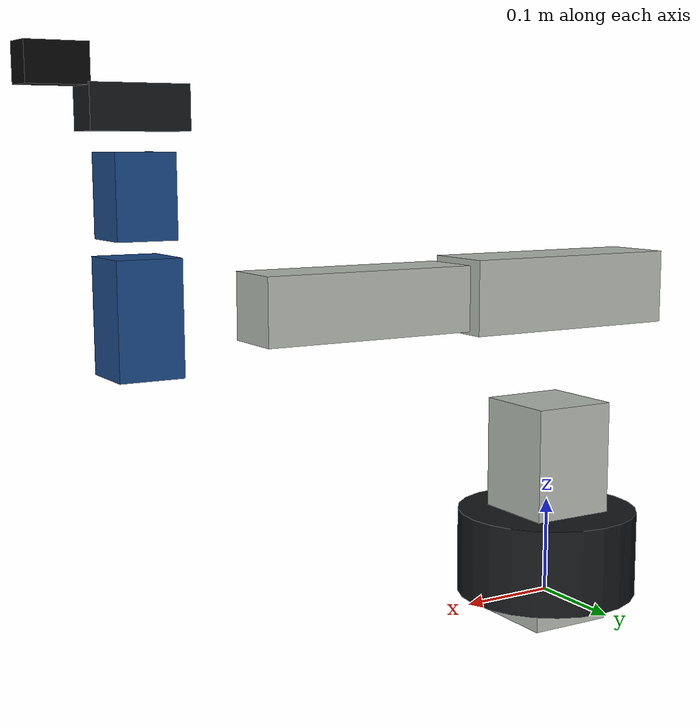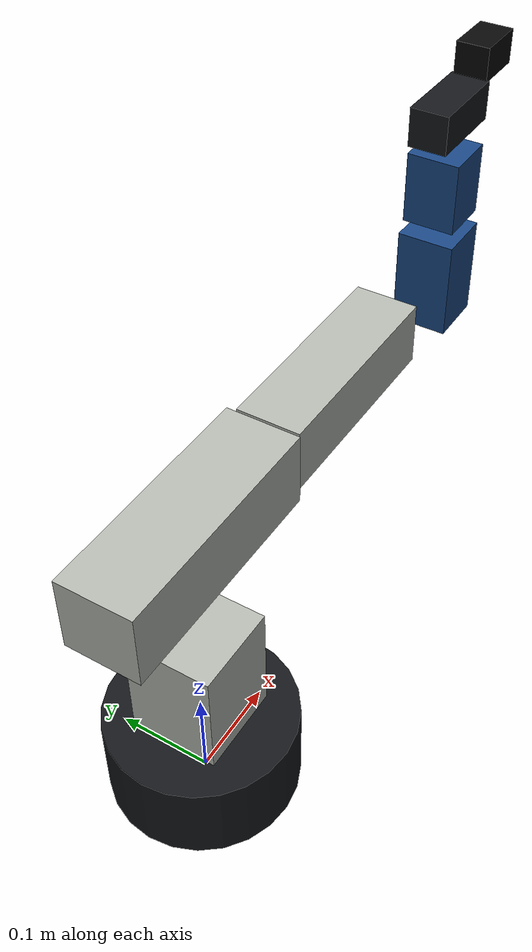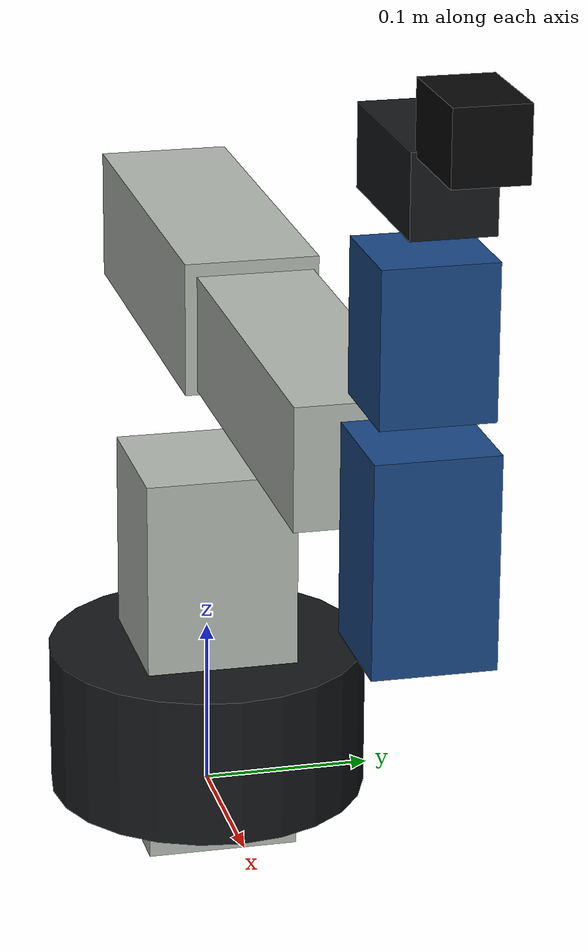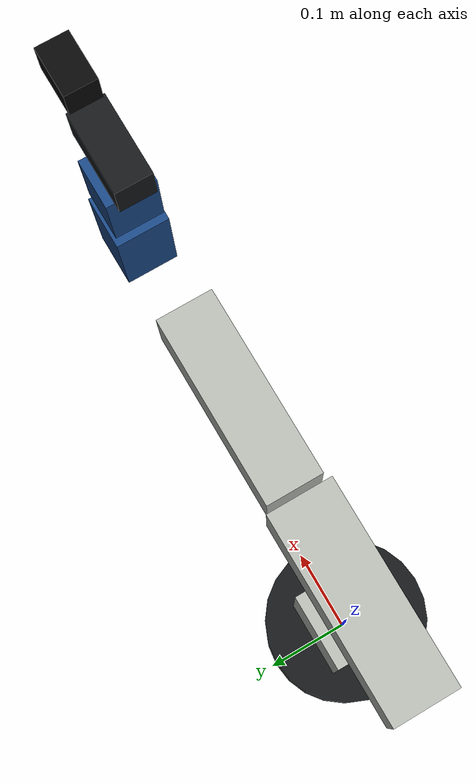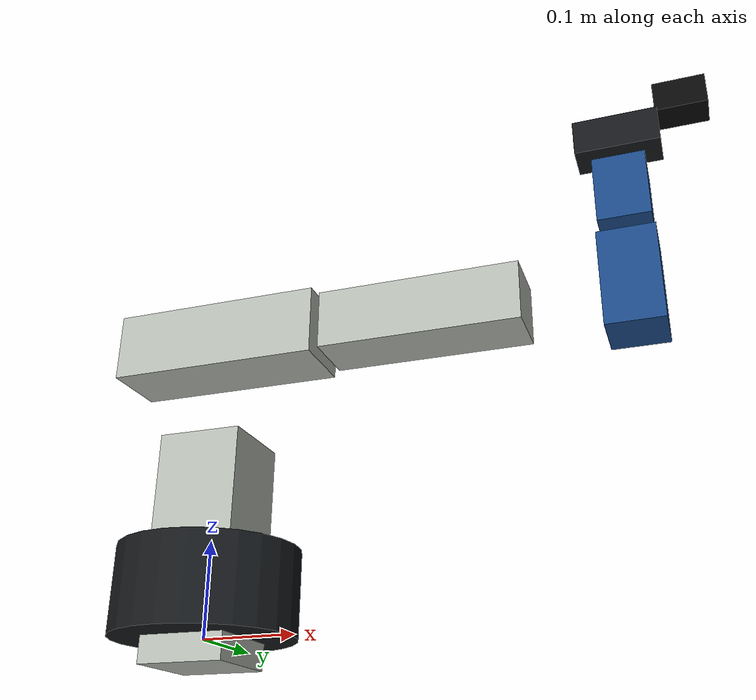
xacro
<?xml version="1.0"?>
<robot xmlns:xacro="http://www.ros.org/wiki/xacro" name="synria_6dof_arm">
  <!-- Approximate model for planning/simulation bringup until vendor URDF/CAD is available. -->

  <xacro:include filename="$(find synria_arm_description)/urdf/synria_c10_camera.xacro"/>

  <xacro:property name="base_height" value="0.090"/>
  <xacro:property name="upper_arm" value="0.235"/>
  <xacro:property name="forearm" value="0.220"/>
  <xacro:property name="wrist" value="0.105"/>
  <xacro:property name="tool" value="0.090"/>

  <material name="synria_dark">
    <color rgba="0.08 0.09 0.10 1.0"/>
  </material>
  <material name="synria_silver">
    <color rgba="0.70 0.72 0.69 1.0"/>
  </material>
  <material name="synria_blue">
    <color rgba="0.10 0.28 0.52 1.0"/>
  </material>

  <xacro:macro name="box_link" params="name size mass color">
    <link name="${name}">
      <visual>
        <origin xyz="0 0 0" rpy="0 0 0"/>
        <geometry>
          <box size="${size}"/>
        </geometry>
        <material name="${color}"/>
      </visual>
      <collision>
        <origin xyz="0 0 0" rpy="0 0 0"/>
        <geometry>
          <box size="${size}"/>
        </geometry>
      </collision>
      <inertial>
        <origin xyz="0 0 0" rpy="0 0 0"/>
        <mass value="${mass}"/>
        <inertia ixx="0.01" ixy="0.0" ixz="0.0" iyy="0.01" iyz="0.0" izz="0.01"/>
      </inertial>
    </link>
  </xacro:macro>

  <link name="world"/>

  <link name="base_link">
    <visual>
      <origin xyz="0 0 0.045" rpy="0 0 0"/>
      <geometry>
        <cylinder radius="0.095" length="${base_height}"/>
      </geometry>
      <material name="synria_dark"/>
    </visual>
    <collision>
      <origin xyz="0 0 0.045" rpy="0 0 0"/>
      <geometry>
        <cylinder radius="0.095" length="${base_height}"/>
      </geometry>
    </collision>
    <inertial>
      <origin xyz="0 0 0.045" rpy="0 0 0"/>
      <mass value="1.2"/>
      <inertia ixx="0.01" ixy="0.0" ixz="0.0" iyy="0.01" iyz="0.0" izz="0.01"/>
    </inertial>
  </link>

  <joint name="world_to_base" type="fixed">
    <parent link="world"/>
    <child link="base_link"/>
    <origin xyz="0 0 0" rpy="0 0 0"/>
  </joint>

  <xacro:box_link name="shoulder_link" size="0.090 0.090 ${upper_arm}" mass="0.8" color="synria_silver"/>
  <xacro:box_link name="upper_arm_link" size="${upper_arm} 0.075 0.075" mass="0.7" color="synria_silver"/>
  <xacro:box_link name="forearm_link" size="${forearm} 0.065 0.065" mass="0.55" color="synria_silver"/>
  <xacro:box_link name="wrist_1_link" size="0.060 0.060 ${wrist}" mass="0.25" color="synria_blue"/>
  <xacro:box_link name="wrist_2_link" size="0.055 0.055 0.075" mass="0.20" color="synria_blue"/>
  <xacro:box_link name="tool0" size="${tool} 0.040 0.040" mass="0.12" color="synria_dark"/>

  <joint name="joint_1" type="revolute">
    <parent link="base_link"/>
    <child link="shoulder_link"/>
    <origin xyz="0 0 ${base_height}" rpy="0 0 0"/>
    <axis xyz="0 0 1"/>
    <limit lower="-${pi}" upper="${pi}" effort="30" velocity="1.5"/>
  </joint>

  <joint name="joint_2" type="revolute">
    <parent link="shoulder_link"/>
    <child link="upper_arm_link"/>
    <origin xyz="0 0 ${upper_arm}" rpy="0 0 0"/>
    <axis xyz="0 1 0"/>
    <limit lower="-1.5708" upper="1.5708" effort="30" velocity="1.5"/>
  </joint>

  <joint name="joint_3" type="revolute">
    <parent link="upper_arm_link"/>
    <child link="forearm_link"/>
    <origin xyz="${upper_arm} 0 0" rpy="0 0 0"/>
    <axis xyz="0 1 0"/>
    <limit lower="-2.3562" upper="2.3562" effort="25" velocity="1.5"/>
  </joint>

  <joint name="joint_4" type="revolute">
    <parent link="forearm_link"/>
    <child link="wrist_1_link"/>
    <origin xyz="${forearm} 0 0" rpy="0 0 0"/>
    <axis xyz="1 0 0"/>
    <limit lower="-${pi}" upper="${pi}" effort="15" velocity="2.0"/>
  </joint>

  <joint name="joint_5" type="revolute">
    <parent link="wrist_1_link"/>
    <child link="wrist_2_link"/>
    <origin xyz="0 0 ${wrist}" rpy="0 0 0"/>
    <axis xyz="0 1 0"/>
    <limit lower="-1.5708" upper="1.5708" effort="15" velocity="2.0"/>
  </joint>

  <joint name="joint_6" type="revolute">
    <parent link="wrist_2_link"/>
    <child link="tool0"/>
    <origin xyz="0 0 0.075" rpy="0 0 0"/>
    <axis xyz="1 0 0"/>
    <limit lower="-${pi}" upper="${pi}" effort="10" velocity="2.5"/>
  </joint>

  <xacro:synria_c10_camera parent="tool0" origin_xyz="0.070 0 0.035" origin_rpy="0 0 0"/>

  <ros2_control name="SynriaArmSystem" type="system">
    <hardware>
      <plugin>mock_components/GenericSystem</plugin>
    </hardware>
    <joint name="joint_1">
      <command_interface name="position"/>
      <state_interface name="position"/>
      <state_interface name="velocity"/>
    </joint>
    <joint name="joint_2">
      <command_interface name="position"/>
      <state_interface name="position"/>
      <state_interface name="velocity"/>
    </joint>
    <joint name="joint_3">
      <command_interface name="position"/>
      <state_interface name="position"/>
      <state_interface name="velocity"/>
    </joint>
    <joint name="joint_4">
      <command_interface name="position"/>
      <state_interface name="position"/>
      <state_interface name="velocity"/>
    </joint>
    <joint name="joint_5">
      <command_interface name="position"/>
      <state_interface name="position"/>
      <state_interface name="velocity"/>
    </joint>
    <joint name="joint_6">
      <command_interface name="position"/>
      <state_interface name="position"/>
      <state_interface name="velocity"/>
    </joint>
  </ros2_control>
</robot>

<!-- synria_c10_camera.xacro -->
<robot xmlns:xacro="http://www.ros.org/wiki/xacro">
  <xacro:macro name="synria_c10_camera" params="parent origin_xyz:='0 0 0' origin_rpy:='0 0 0'">
    <link name="c10_camera_link">
      <visual>
        <origin xyz="0 0 0" rpy="0 0 0"/>
        <geometry>
          <box size="0.055 0.035 0.035"/>
        </geometry>
        <material name="camera_black">
          <color rgba="0.03 0.03 0.03 1.0"/>
        </material>
      </visual>
      <collision>
        <origin xyz="0 0 0" rpy="0 0 0"/>
        <geometry>
          <box size="0.055 0.035 0.035"/>
        </geometry>
      </collision>
      <inertial>
        <origin xyz="0 0 0" rpy="0 0 0"/>
        <mass value="0.08"/>
        <inertia ixx="0.00002" ixy="0.0" ixz="0.0" iyy="0.00002" iyz="0.0" izz="0.00002"/>
      </inertial>
    </link>

    <joint name="c10_camera_fixed" type="fixed">
      <parent link="${parent}"/>
      <child link="c10_camera_link"/>
      <origin xyz="${origin_xyz}" rpy="${origin_rpy}"/>
    </joint>
  </xacro:macro>
</robot>
